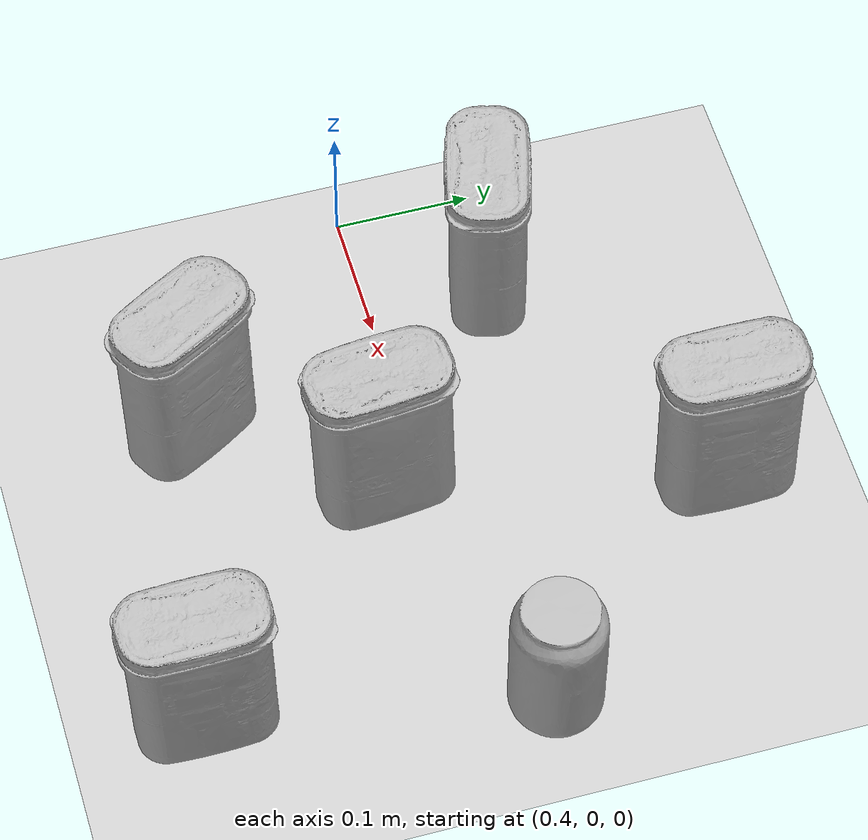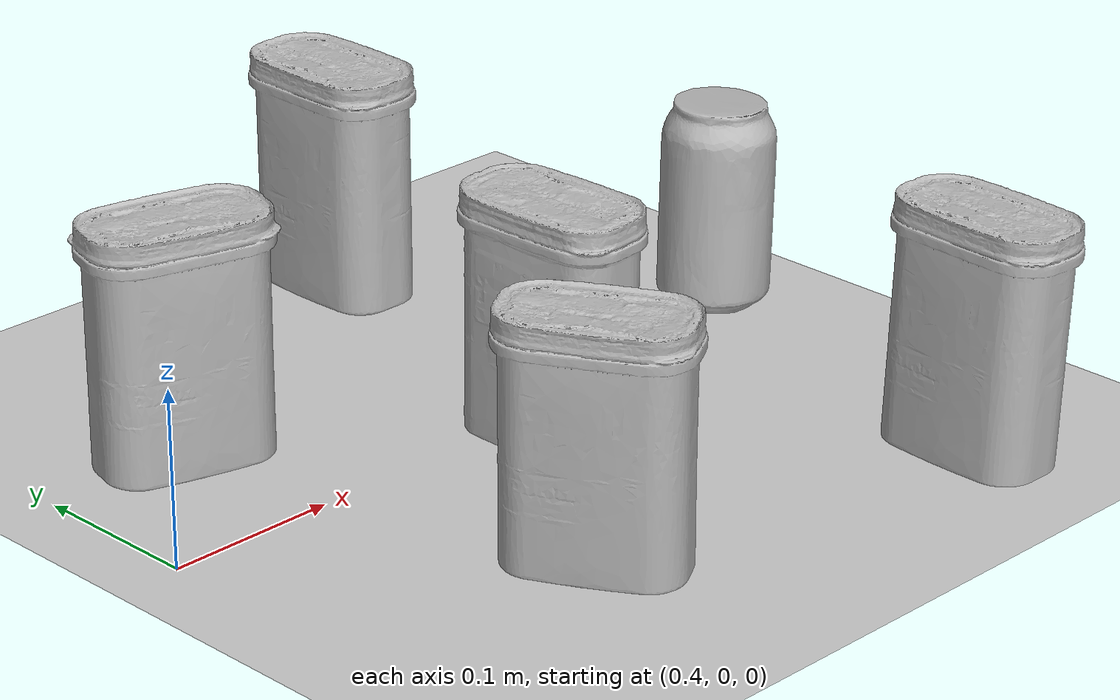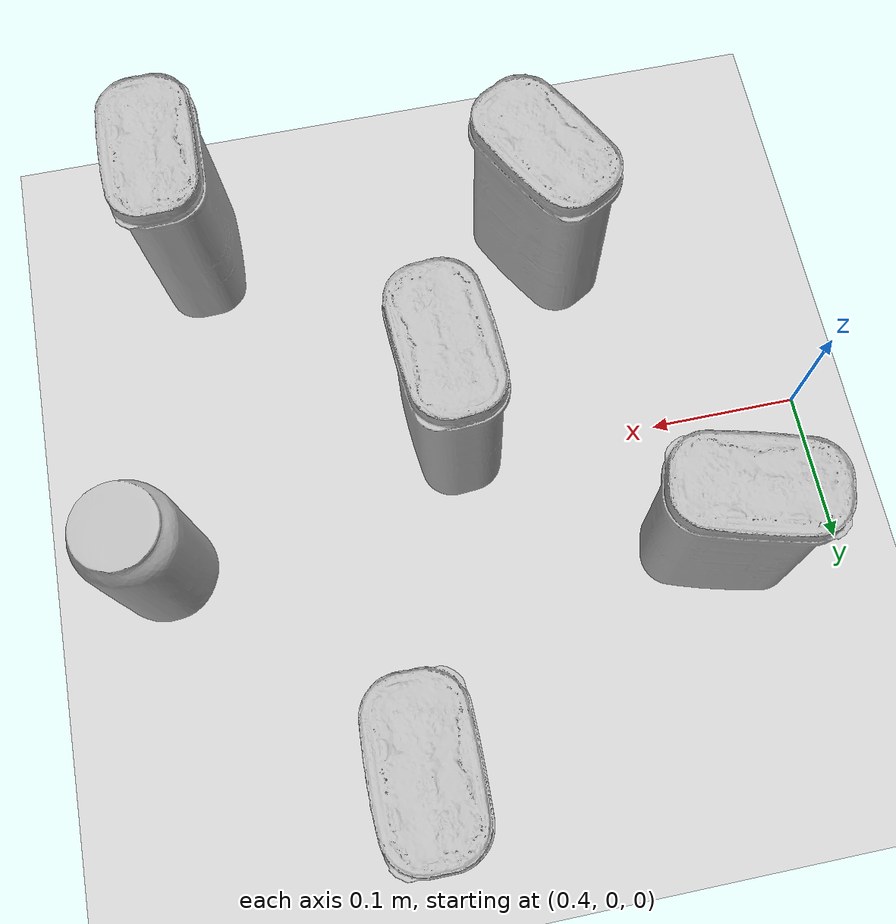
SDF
<sdf version="1.7">
 <world name="default">
  <model name="ground_plane">
   <static>1</static>
   <link name="link">
    <collision name="collision">
     <geometry><plane><normal>0 0 1</normal><size>100 100</size></plane></geometry>
     <surface>
      <contact><collide_bitmask>65535</collide_bitmask></contact>
      <friction><ode><mu>100</mu><mu2>50</mu2></ode></friction>
     </surface>
    </collision>
    <visual name="visual">
     <cast_shadows>0</cast_shadows>
     <geometry><plane><normal>0 0 1</normal><size>100 100</size></plane></geometry>
     <material>
      <script><uri>file://media/materials/scripts/gazebo.material</uri><name>Gazebo/Grey</name></script>
     </material>
    </visual>
   </link>
  </model>
  <light name="sun" type="directional">
   <cast_shadows>0</cast_shadows>
   <pose>0 0 10 0 -0 0</pose>
   <diffuse>0.8 0.8 0.8 1</diffuse>
   <specular>0.2 0.2 0.2 1</specular>
   <attenuation>
    <range>1000</range>
    <constant>0.9</constant>
    <linear>0.01</linear>
    <quadratic>0.001</quadratic>
   </attenuation>
   <direction>-0.5 0.1 -0.9</direction>
   <spot><inner_angle>0</inner_angle><outer_angle>0</outer_angle><falloff>0</falloff></spot>
  </light>
  <physics name="default_physics" default="1" type="ode">
   <real_time_update_rate>1000</real_time_update_rate>
   <bullet>
    <solver><iters>50</iters><min_step_size>0.0001</min_step_size><sor>1.3</sor><type>quick</type></solver>
    <constraints>
     <contact_surface_layer>0.001</contact_surface_layer>
     <cfm>0</cfm>
     <erp>0.2</erp>
     <split_impulse>1</split_impulse>
     <split_impulse_penetration_threshold>-0.01</split_impulse_penetration_threshold>
    </constraints>
   </bullet>
   <max_contacts>20</max_contacts>
   <max_step_size>0.001</max_step_size>
   <real_time_factor>1</real_time_factor>
  </physics>
  <gravity>0 0 -9.8</gravity>
  <magnetic_field>6e-06 2.3e-05 -4.2e-05</magnetic_field>
  <atmosphere type="adiabatic"/>
  <scene><ambient>0.4 0.4 0.4 1</ambient><background>0.7 0.7 0.7 1</background><shadows>0</shadows></scene>
  <spherical_coordinates>
   <surface_model>EARTH_WGS84</surface_model>
   <latitude_deg>0</latitude_deg>
   <longitude_deg>0</longitude_deg>
   <elevation>0</elevation>
   <heading_deg>0</heading_deg>
  </spherical_coordinates>
  <model name="coke_can">
   <link name="link">
    <inertial>
     <pose>0 0 0.06 0 -0 0</pose>
     <mass>0.39</mass>
     <inertia>
      <ixx>0.00055575</ixx>
      <ixy>0</ixy>
      <ixz>0</ixz>
      <iyy>0.00055575</iyy>
      <iyz>0</iyz>
      <izz>0.0001755</izz>
     </inertia>
    </inertial>
    <collision name="collision">
     <pose>0.003937 0.004724 -0.18 0 -0 0</pose>
     <geometry><mesh><uri>model://coke_can/meshes/coke_can.dae</uri></mesh></geometry>
     <surface>
      <friction><ode><mu>1</mu><mu2>1</mu2></ode></friction>
      <contact><ode><kp>1e+07</kp><kd>1</kd><min_depth>0.001</min_depth><max_vel>0.1</max_vel></ode></contact>
     </surface>
    </collision>
    <visual name="visual">
     <pose>0.003937 0.004724 -0.18 0 -0 0</pose>
     <geometry><mesh><uri>model://coke_can/meshes/coke_can.dae</uri></mesh></geometry>
    </visual>
   </link>
   <pose>0.840552 0.037478 -0.003472 -0.036723 0.008274 -1.35105</pose>
  </model>
  <model name="Squirrel">
   <link name="link_0">
    <visual name="visual">
     <geometry>
      <mesh>
       <uri>/home/diana/.ignition/fuel/fuel.ignitionrobotics.org/googleresearch/models/squirrel/1/meshes/model.obj</uri>
      </mesh>
     </geometry>
    </visual>
    <collision name="collision_0">
     <geometry>
      <mesh>
       <uri>/home/diana/.ignition/fuel/fuel.ignitionrobotics.org/googleresearch/models/squirrel/1/meshes/model.obj</uri>
      </mesh>
     </geometry>
    </collision>
    <inertial>
     <inertia><ixx>1</ixx><ixy>0</ixy><ixz>0</ixz><iyy>1</iyy><iyz>0</iyz><izz>1</izz></inertia>
     <mass>1</mass>
    </inertial>
   </link>
   <pose>0.695502 0.20649 -7.4e-05 -0.002133 -0.004121 1.5e-05</pose>
  </model>
  <model name="Weisshai_Great_White_Shark">
   <link name="link_0">
    <visual name="visual">
     <geometry>
      <mesh>
       <uri>/home/diana/.ignition/fuel/fuel.ignitionrobotics.org/googleresearch/models/weisshai_great_white_shark/1/meshes/model.obj</uri>
      </mesh>
     </geometry>
    </visual>
    <collision name="collision_0">
     <geometry>
      <mesh>
       <uri>/home/diana/.ignition/fuel/fuel.ignitionrobotics.org/googleresearch/models/weisshai_great_white_shark/1/meshes/model.obj</uri>
      </mesh>
     </geometry>
    </collision>
    <inertial>
     <inertia><ixx>1</ixx><ixy>0</ixy><ixz>0</ixz><iyy>1</iyy><iyz>0</iyz><izz>1</izz></inertia>
     <mass>1</mass>
    </inertial>
   </link>
   <pose>0.789203 -0.196379 -0.003293 0.020125 0.034543 0.008097</pose>
  </model>
  <model name="Threshold_Porcelain_Coffee_Mug_All_Over_Bead_White">
   <link name="link_0">
    <visual name="visual">
     <geometry>
      <mesh>
       <uri>/home/diana/.ignition/fuel/fuel.ignitionrobotics.org/googleresearch/models/threshold_porcelain_coffee_mug_all_over_bead_white/1/meshes/model.obj</uri>
      </mesh>
     </geometry>
    </visual>
    <collision name="collision_0">
     <geometry>
      <mesh>
       <uri>/home/diana/.ignition/fuel/fuel.ignitionrobotics.org/googleresearch/models/threshold_porcelain_coffee_mug_all_over_bead_white/1/meshes/model.obj</uri>
      </mesh>
     </geometry>
    </collision>
    <inertial>
     <inertia><ixx>1</ixx><ixy>0</ixy><ixz>0</ixz><iyy>1</iyy><iyz>0</iyz><izz>1</izz></inertia>
     <mass>1</mass>
    </inertial>
   </link>
   <pose>0.483144 0.092742 -0.000343 -0.00546 -0.008166 1.30854</pose>
  </model>
  <model name="Granimals_20_Wooden_ABC_Blocks_Wagon_g2TinmUGGHI">
   <link name="link_0">
    <visual name="visual">
     <geometry>
      <mesh>
       <uri>/home/diana/.ignition/fuel/fuel.ignitionrobotics.org/googleresearch/models/granimals_20_wooden_abc_blocks_wagon_g2tinmugghi/1/meshes/model.obj</uri>
      </mesh>
     </geometry>
    </visual>
    <collision name="collision_0">
     <geometry>
      <mesh>
       <uri>/home/diana/.ignition/fuel/fuel.ignitionrobotics.org/googleresearch/models/granimals_20_wooden_abc_blocks_wagon_g2tinmugghi/1/meshes/model.obj</uri>
      </mesh>
     </geometry>
    </collision>
    <inertial>
     <inertia><ixx>1</ixx><ixy>0</ixy><ixz>0</ixz><iyy>1</iyy><iyz>0</iyz><izz>1</izz></inertia>
     <mass>1</mass>
    </inertial>
   </link>
   <pose>0.638259 -0.027142 -0.000333 -0.025363 0.004104 -3.06099</pose>
  </model>
  <model name="Perricone_MD_Vitamin_C_Ester_Serum">
   <link name="link_0">
    <visual name="visual">
     <geometry>
      <mesh>
       <uri>/home/diana/.ignition/fuel/fuel.ignitionrobotics.org/googleresearch/models/perricone_md_vitamin_c_ester_serum/1/meshes/model.obj</uri>
      </mesh>
     </geometry>
    </visual>
    <collision name="collision_0">
     <geometry>
      <mesh>
       <uri>/home/diana/.ignition/fuel/fuel.ignitionrobotics.org/googleresearch/models/perricone_md_vitamin_c_ester_serum/1/meshes/model.obj</uri>
      </mesh>
     </geometry>
    </collision>
    <inertial>
     <inertia><ixx>1</ixx><ixy>0</ixy><ixz>0</ixz><iyy>1</iyy><iyz>0</iyz><izz>1</izz></inertia>
     <mass>1</mass>
    </inertial>
   </link>
   <pose>0.552434 -0.148449 -0.000322 0.002292 -0.015058 0.526112</pose>
  </model>
 </world>
</sdf>
